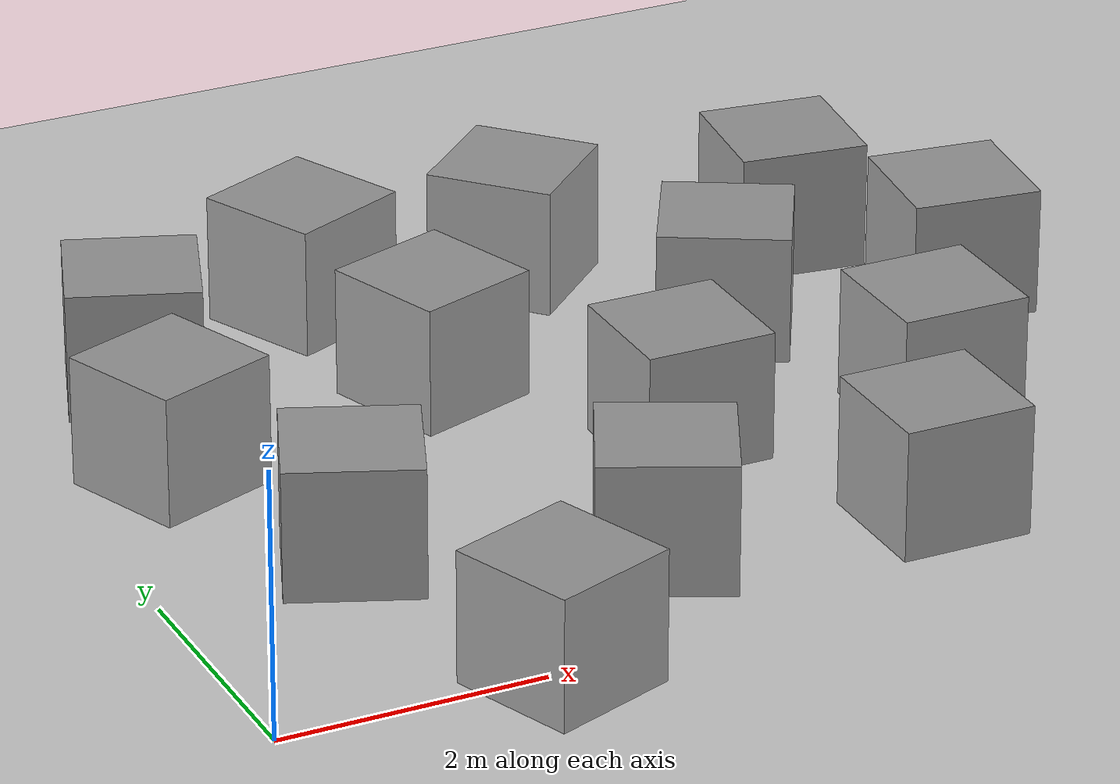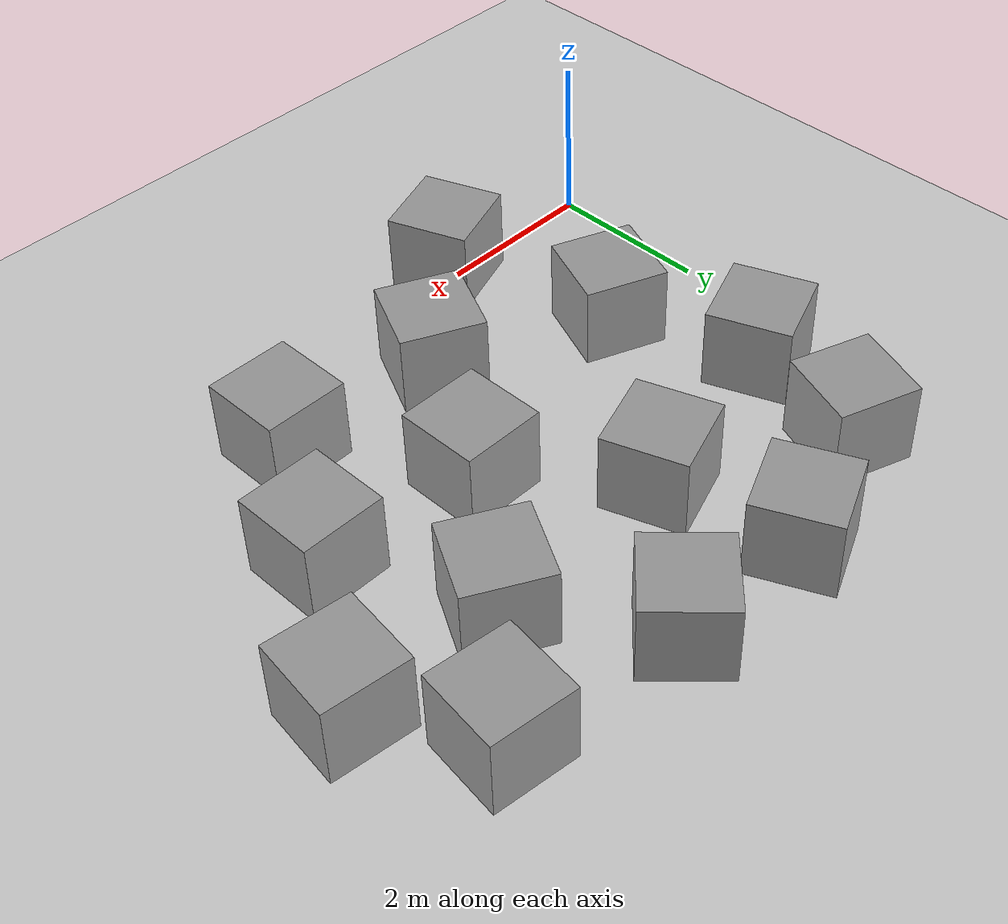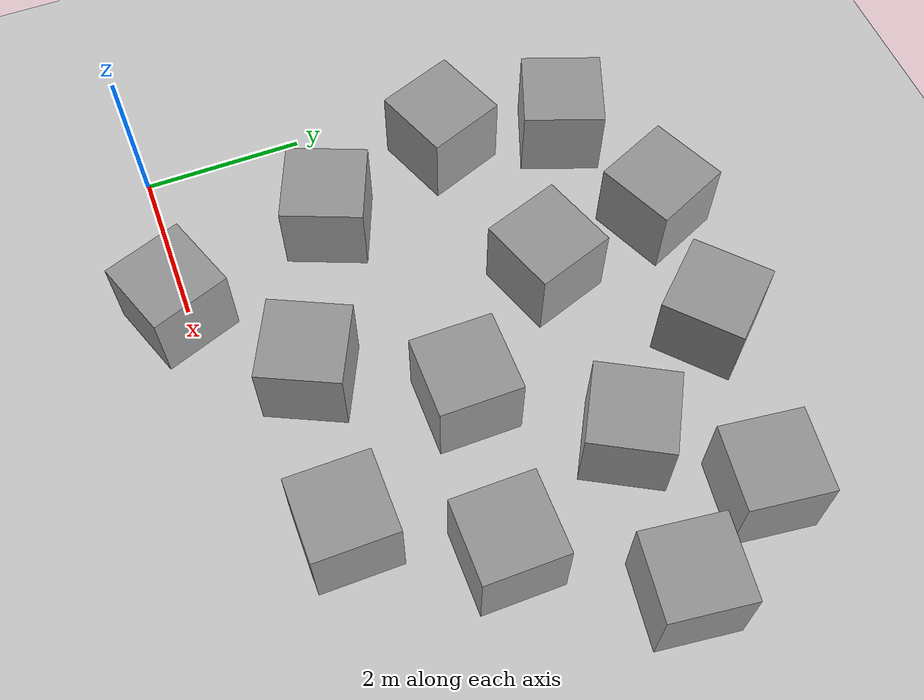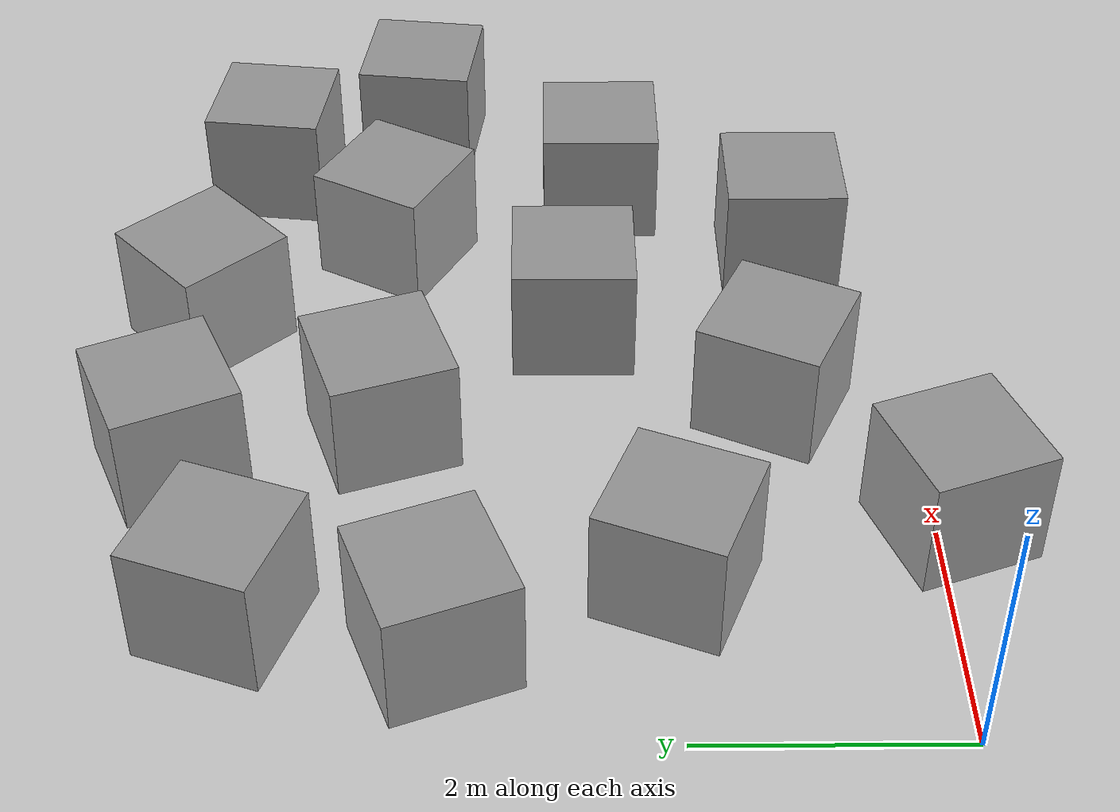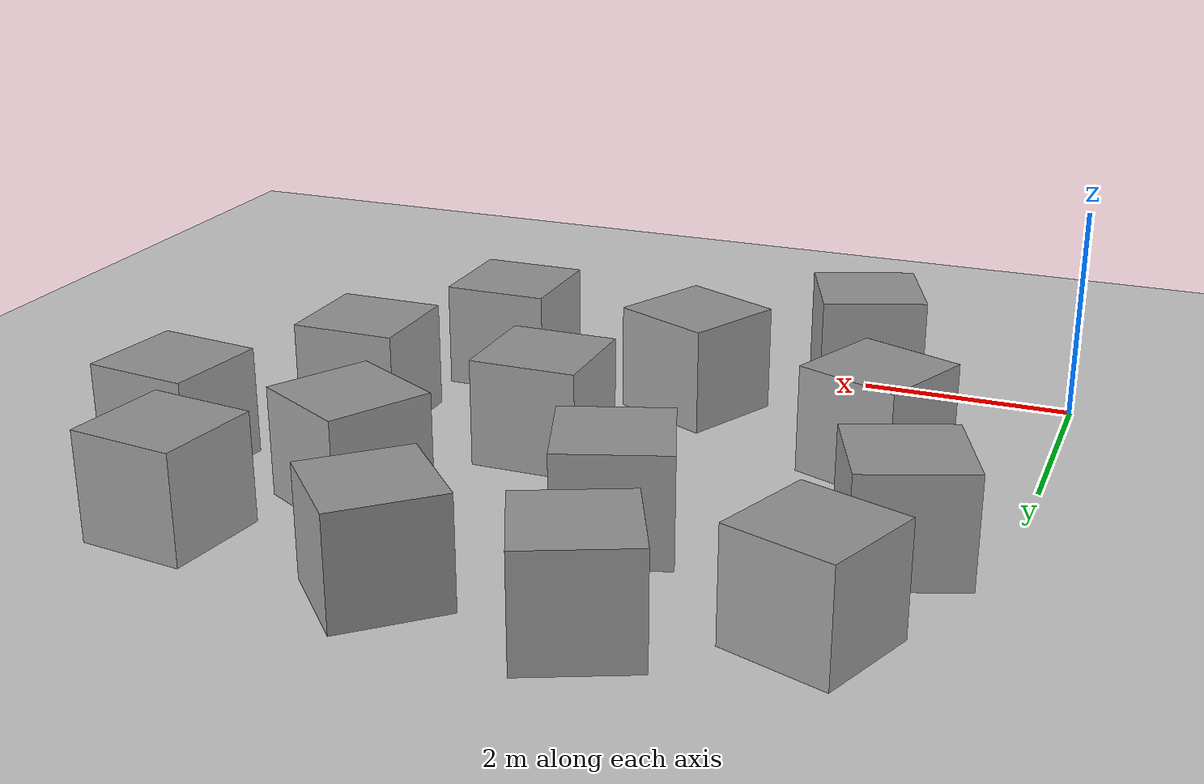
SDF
<sdf version="1.6">
 <world name="default">
  <light name="sun" type="directional">
   <pose>0 0 10 0 -0 0</pose>
   <diffuse>0.8 0.8 0.8 1</diffuse>
   <specular>0.2 0.2 0.2 1</specular>
   <attenuation>
    <range>1000</range>
    <constant>0.9</constant>
    <linear>0.01</linear>
    <quadratic>0.001</quadratic>
   </attenuation>
   <direction>-0.5 0.1 -0.9</direction>
  </light>
  <model name="ground_plane">
   <static>1</static>
   <link name="link">
    <collision name="collision">
     <geometry><plane><normal>0 0 1</normal><size>100 100</size></plane></geometry>
     <surface>
      <contact><collide_bitmask>65535</collide_bitmask></contact>
      <friction><ode><mu>100</mu><mu2>50</mu2></ode></friction>
     </surface>
    </collision>
    <visual name="visual">
     <cast_shadows>0</cast_shadows>
     <geometry><plane><normal>0 0 1</normal><size>100 100</size></plane></geometry>
     <material>
      <script><uri>file://media/materials/scripts/gazebo.material</uri><name>Gazebo/Grey</name></script>
     </material>
    </visual>
   </link>
  </model>
  <gravity>0 0 -9.8</gravity>
  <magnetic_field>6e-06 2.3e-05 -4.2e-05</magnetic_field>
  <atmosphere type="adiabatic"/>
  <physics name="default_physics" default="0" type="ode">
   <max_step_size>0.001</max_step_size>
   <real_time_factor>1</real_time_factor>
   <real_time_update_rate>1000</real_time_update_rate>
  </physics>
  <scene><ambient>0.4 0.4 0.4 1</ambient><background>0.7 0.7 0.7 1</background><shadows>1</shadows></scene>
  <audio><device>default</device></audio>
  <spherical_coordinates>
   <surface_model>EARTH_WGS84</surface_model>
   <latitude_deg>0</latitude_deg>
   <longitude_deg>0</longitude_deg>
   <elevation>0</elevation>
   <heading_deg>0</heading_deg>
  </spherical_coordinates>
  <model name="unit_box">
   <pose>3.09089 4.22942 0.5 0 -0 0.33025</pose>
   <link name="link">
    <inertial>
     <mass>1</mass>
     <inertia>
      <ixx>0.166667</ixx>
      <ixy>0</ixy>
      <ixz>0</ixz>
      <iyy>0.166667</iyy>
      <iyz>0</iyz>
      <izz>0.166667</izz>
     </inertia>
    </inertial>
    <collision name="collision"><geometry><box><size>1 1 1</size></box></geometry></collision>
    <visual name="visual">
     <geometry><box><size>1 1 1</size></box></geometry>
     <material>
      <script><name>Gazebo/Grey</name><uri>file://media/materials/scripts/gazebo.material</uri></script>
     </material>
    </visual>
   </link>
  </model>
  <model name="unit_box_0">
   <pose>3.43753 1.11801 0.5 -0 -0 -0.444787</pose>
   <link name="link">
    <inertial>
     <mass>1</mass>
     <inertia>
      <ixx>0.166667</ixx>
      <ixy>0</ixy>
      <ixz>0</ixz>
      <iyy>0.166667</iyy>
      <iyz>0</iyz>
      <izz>0.166667</izz>
     </inertia>
    </inertial>
    <collision name="collision"><geometry><box><size>1 1 1</size></box></geometry></collision>
    <visual name="visual">
     <geometry><box><size>1 1 1</size></box></geometry>
     <material>
      <script><name>Gazebo/Grey</name><uri>file://media/materials/scripts/gazebo.material</uri></script>
     </material>
    </visual>
   </link>
  </model>
  <model name="unit_box_1">
   <pose>4.35609 2.71095 0.5 0 -0 0</pose>
   <link name="link">
    <inertial>
     <mass>1</mass>
     <inertia>
      <ixx>0.166667</ixx>
      <ixy>0</ixy>
      <ixz>0</ixz>
      <iyy>0.166667</iyy>
      <iyz>0</iyz>
      <izz>0.166667</izz>
     </inertia>
    </inertial>
    <collision name="collision"><geometry><box><size>1 1 1</size></box></geometry></collision>
    <visual name="visual">
     <geometry><box><size>1 1 1</size></box></geometry>
     <material>
      <script><name>Gazebo/Grey</name><uri>file://media/materials/scripts/gazebo.material</uri></script>
     </material>
    </visual>
   </link>
  </model>
  <model name="unit_box_2">
   <pose>2.05055 -0.101359 0.499999 5e-06 3e-06 0.352638</pose>
   <link name="link">
    <inertial>
     <mass>1</mass>
     <inertia>
      <ixx>0.166667</ixx>
      <ixy>0</ixy>
      <ixz>0</ixz>
      <iyy>0.166667</iyy>
      <iyz>0</iyz>
      <izz>0.166667</izz>
     </inertia>
    </inertial>
    <collision name="collision"><geometry><box><size>1 1 1</size></box></geometry></collision>
    <visual name="visual">
     <geometry><box><size>1 1 1</size></box></geometry>
     <material>
      <script><name>Gazebo/Grey</name><uri>file://media/materials/scripts/gazebo.material</uri></script>
     </material>
    </visual>
   </link>
  </model>
  <model name="unit_box_3">
   <pose>7.35507 4.07491 0.5 0 0 -0.126652</pose>
   <link name="link">
    <inertial>
     <mass>1</mass>
     <inertia>
      <ixx>0.166667</ixx>
      <ixy>0</ixy>
      <ixz>0</ixz>
      <iyy>0.166667</iyy>
      <iyz>0</iyz>
      <izz>0.166667</izz>
     </inertia>
    </inertial>
    <collision name="collision"><geometry><box><size>1 1 1</size></box></geometry></collision>
    <visual name="visual">
     <geometry><box><size>1 1 1</size></box></geometry>
     <material>
      <script><name>Gazebo/Grey</name><uri>file://media/materials/scripts/gazebo.material</uri></script>
     </material>
    </visual>
   </link>
  </model>
  <model name="unit_box_4">
   <pose>0.816696 3.73405 0.499995 -1e-05 -0 0.363043</pose>
   <link name="link">
    <inertial>
     <mass>1</mass>
     <inertia>
      <ixx>0.166667</ixx>
      <ixy>0</ixy>
      <ixz>0</ixz>
      <iyy>0.166667</iyy>
      <iyz>0</iyz>
      <izz>0.166667</izz>
     </inertia>
    </inertial>
    <collision name="collision"><geometry><box><size>1 1 1</size></box></geometry></collision>
    <visual name="visual">
     <geometry><box><size>1 1 1</size></box></geometry>
     <material>
      <script><name>Gazebo/Grey</name><uri>file://media/materials/scripts/gazebo.material</uri></script>
     </material>
    </visual>
   </link>
  </model>
  <model name="unit_box_5">
   <pose>1.45307 1.99797 0.5 0 0 -0.386964</pose>
   <link name="link">
    <inertial>
     <mass>1</mass>
     <inertia>
      <ixx>0.166667</ixx>
      <ixy>0</ixy>
      <ixz>0</ixz>
      <iyy>0.166667</iyy>
      <iyz>0</iyz>
      <izz>0.166667</izz>
     </inertia>
    </inertial>
    <collision name="collision"><geometry><box><size>1 1 1</size></box></geometry></collision>
    <visual name="visual">
     <geometry><box><size>1 1 1</size></box></geometry>
     <material>
      <script><name>Gazebo/Grey</name><uri>file://media/materials/scripts/gazebo.material</uri></script>
     </material>
    </visual>
   </link>
  </model>
  <model name="unit_box_6">
   <pose>6.58328 5.38343 0.5 -0 -0 -0.126672</pose>
   <link name="link">
    <inertial>
     <mass>1</mass>
     <inertia>
      <ixx>0.166667</ixx>
      <ixy>0</ixy>
      <ixz>0</ixz>
      <iyy>0.166667</iyy>
      <iyz>0</iyz>
      <izz>0.166667</izz>
     </inertia>
    </inertial>
    <collision name="collision"><geometry><box><size>1 1 1</size></box></geometry></collision>
    <visual name="visual">
     <geometry><box><size>1 1 1</size></box></geometry>
     <material>
      <script><name>Gazebo/Grey</name><uri>file://media/materials/scripts/gazebo.material</uri></script>
     </material>
    </visual>
   </link>
  </model>
  <model name="unit_box_7">
   <pose>6.28141 2.44867 0.5 -0 -0 -0</pose>
   <link name="link">
    <inertial>
     <mass>1</mass>
     <inertia>
      <ixx>0.166667</ixx>
      <ixy>0</ixy>
      <ixz>0</ixz>
      <iyy>0.166667</iyy>
      <iyz>0</iyz>
      <izz>0.166667</izz>
     </inertia>
    </inertial>
    <collision name="collision"><geometry><box><size>1 1 1</size></box></geometry></collision>
    <visual name="visual">
     <geometry><box><size>1 1 1</size></box></geometry>
     <material>
      <script><name>Gazebo/Grey</name><uri>file://media/materials/scripts/gazebo.material</uri></script>
     </material>
    </visual>
   </link>
  </model>
  <model name="unit_box_8">
   <pose>4.46884 5.75563 0.5 0 -0 0.744475</pose>
   <link name="link">
    <inertial>
     <mass>1</mass>
     <inertia>
      <ixx>0.166667</ixx>
      <ixy>0</ixy>
      <ixz>0</ixz>
      <iyy>0.166667</iyy>
      <iyz>0</iyz>
      <izz>0.166667</izz>
     </inertia>
    </inertial>
    <collision name="collision"><geometry><box><size>1 1 1</size></box></geometry></collision>
    <visual name="visual">
     <geometry><box><size>1 1 1</size></box></geometry>
     <material>
      <script><name>Gazebo/Grey</name><uri>file://media/materials/scripts/gazebo.material</uri></script>
     </material>
    </visual>
   </link>
  </model>
  <model name="unit_box_9">
   <pose>5.44156 0.899003 0.5 0 -0 0</pose>
   <link name="link">
    <inertial>
     <mass>1</mass>
     <inertia>
      <ixx>0.166667</ixx>
      <ixy>0</ixy>
      <ixz>0</ixz>
      <iyy>0.166667</iyy>
      <iyz>0</iyz>
      <izz>0.166667</izz>
     </inertia>
    </inertial>
    <collision name="collision"><geometry><box><size>1 1 1</size></box></geometry></collision>
    <visual name="visual">
     <geometry><box><size>1 1 1</size></box></geometry>
     <material>
      <script><name>Gazebo/Grey</name><uri>file://media/materials/scripts/gazebo.material</uri></script>
     </material>
    </visual>
   </link>
  </model>
  <model name="unit_box_10">
   <pose>1.14253 5.24698 0.5 0 -0 -0.349362</pose>
   <link name="link">
    <inertial>
     <mass>1</mass>
     <inertia>
      <ixx>0.166667</ixx>
      <ixy>0</ixy>
      <ixz>0</ixz>
      <iyy>0.166667</iyy>
      <iyz>0</iyz>
      <izz>0.166667</izz>
     </inertia>
    </inertial>
    <collision name="collision"><geometry><box><size>1 1 1</size></box></geometry></collision>
    <visual name="visual">
     <geometry><box><size>1 1 1</size></box></geometry>
     <material>
      <script><name>Gazebo/Grey</name><uri>file://media/materials/scripts/gazebo.material</uri></script>
     </material>
    </visual>
   </link>
  </model>
  <model name="unit_box_11">
   <pose>5.50152 4.22894 0.499998 1e-06 4e-06 -0.506837</pose>
   <link name="link">
    <inertial>
     <mass>1</mass>
     <inertia>
      <ixx>0.166667</ixx>
      <ixy>0</ixy>
      <ixz>0</ixz>
      <iyy>0.166667</iyy>
      <iyz>0</iyz>
      <izz>0.166667</izz>
     </inertia>
    </inertial>
    <collision name="collision"><geometry><box><size>1 1 1</size></box></geometry></collision>
    <visual name="visual">
     <geometry><box><size>1 1 1</size></box></geometry>
     <material>
      <script><name>Gazebo/Grey</name><uri>file://media/materials/scripts/gazebo.material</uri></script>
     </material>
    </visual>
   </link>
  </model>
  <model name="unit_box_12">
   <pose>2.76152 5.85708 0.5 0 -0 0.41676</pose>
   <link name="link">
    <inertial>
     <mass>1</mass>
     <inertia>
      <ixx>0.166667</ixx>
      <ixy>0</ixy>
      <ixz>0</ixz>
      <iyy>0.166667</iyy>
      <iyz>0</iyz>
      <izz>0.166667</izz>
     </inertia>
    </inertial>
    <collision name="collision"><geometry><box><size>1 1 1</size></box></geometry></collision>
    <visual name="visual">
     <geometry><box><size>1 1 1</size></box></geometry>
     <material>
      <script><name>Gazebo/Grey</name><uri>file://media/materials/scripts/gazebo.material</uri></script>
     </material>
    </visual>
   </link>
  </model>
 </world>
</sdf>
